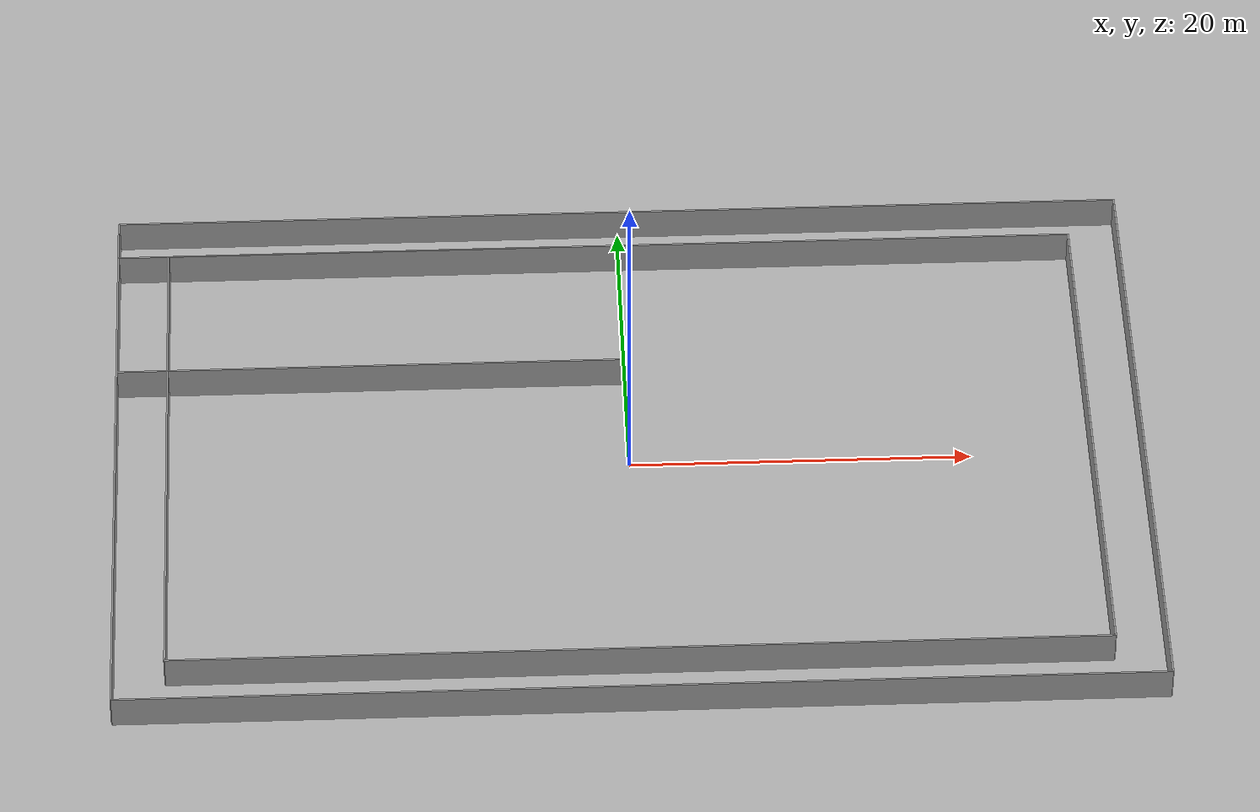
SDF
<?xml version="1.0"?>
<sdf version="1.9">
  <world name="levine_loop_world">
    <physics type="ode">
      <max_step_size>0.001</max_step_size>
      <real_time_factor>1</real_time_factor>
      <real_time_update_rate>1000</real_time_update_rate>
    </physics>
    <light name="sun" type="directional">
      <cast_shadows>1</cast_shadows>
      <pose>0 0 100 0 0 0</pose>
      <diffuse>0.8 0.8 0.8 1</diffuse>
      <specular>0.1 0.1 0.1 1</specular>
      <direction>-0.5 0.5 -1</direction>
    </light>
    <!-- Ground Plane -->
    <model name="ground_plane">
      <static>true</static>
      <pose>0 0 0 0 0 0</pose>
      <link name="link">
        <collision name="collision">
          <geometry>
            <plane>
              <normal>0 0 1</normal>
              <size>200 200</size>
            </plane>
          </geometry>
          <surface>
            <friction>
              <ode>
                <solver>
                  <type>quick</type>
                  <iters>50</iters>
                  <precon_iters>0</precon_iters>
                  <sor>1.3</sor>  <!-- Relaxation factor -->
                </solver>
                <constraints>
                  <cfm>1e-5</cfm>  <!-- Contact "softness" -->
                  <erp>0.2</erp>   <!-- Error reduction -->
                </constraints>
              </ode>
            </friction>
          </surface>
        </collision>
        <visual name="visual">
          <cast_shadows>0</cast_shadows>
          <geometry>
            <plane>
              <normal>0 0 1</normal>
              <size>200 200</size>
            </plane>
          </geometry>
          <material>
            <ambient>0.4 0.4 0.4 1</ambient>
            <diffuse>0.7 0.7 0.7 1</diffuse>
          </material>
        </visual>
      </link>
    </model>
    <!-- Model for Walls -->
    <model name="levine_walls">
      <static>true</static>
      <pose>0 0 0 0 0 0</pose>
      <!-- Outer Walls -->
      <link name="outer_wall_north">
        <collision name="collision">
          <geometry>
            <box>
              <size>60 0.1 2</size>
            </box>
          </geometry>
          <pose>0 0 1 0 0 0</pose>
        </collision>
        <visual name="visual">
          <pose>0 0 1 0 0 0</pose>
          <geometry>
            <box>
              <size>60 0.1 2</size>
            </box>
          </geometry>
          <material>
            <script>
              <uri>file://media/materials/scripts/gazebo.material</uri>
              <name>Gazebo/Grey</name>
            </script>
            <ambient>1 1 1 1</ambient>
          </material>
        </visual>
        <pose>0 20 0 0 0 0</pose>
      </link>
      <link name="outer_wall_south">
        <collision name="collision">
          <geometry>
            <box>
              <size>60 0.1 2</size>
            </box>
          </geometry>
          <pose>0 0 1 0 0 0</pose>
        </collision>
        <visual name="visual">
          <pose>0 0 1 0 0 0</pose>
          <geometry>
            <box>
              <size>60 0.1 2</size>
            </box>
          </geometry>
          <material>
            <script>
              <uri>file://media/materials/scripts/gazebo.material</uri>
              <name>Gazebo/Grey</name>
            </script>
            <ambient>1 1 1 1</ambient>
          </material>
        </visual>
        <pose>0 -20 0 0 0 0</pose>
      </link>
      <link name="outer_wall_east">
        <collision name="collision">
          <geometry>
            <box>
              <size>40 0.1 2</size>
            </box>
          </geometry>
          <pose>0 0 1 0 0 0</pose>
        </collision>
        <visual name="visual">
          <pose>0 0 1 0 0 0</pose>
          <geometry>
            <box>
              <size>40 0.1 2</size>
            </box>
          </geometry>
          <material>
            <script>
              <uri>file://media/materials/scripts/gazebo.material</uri>
              <name>Gazebo/Grey</name>
            </script>
            <ambient>1 1 1 1</ambient>
          </material>
        </visual>
        <pose>30 0 0 0 0 1.57079</pose>
      </link>
      <link name="outer_wall_west">
        <collision name="collision">
          <geometry>
            <box>
              <size>40 0.1 2</size>
            </box>
          </geometry>
          <pose>0 0 1 0 0 0</pose>
        </collision>
        <visual name="visual">
          <pose>0 0 1 0 0 0</pose>
          <geometry>
            <box>
              <size>40 0.1 2</size>
            </box>
          </geometry>
          <material>
            <script>
              <uri>file://media/materials/scripts/gazebo.material</uri>
              <name>Gazebo/Grey</name>
            </script>
            <ambient>1 1 1 1</ambient>
          </material>
        </visual>
        <pose>-30 0 0 0 0 1.57079</pose>
      </link>
      <!-- Inner Walls (Main Loop) -->
      <link name="inner_wall_north">
        <collision name="collision">
          <geometry>
            <box>
              <size>54 0.1 2</size>
            </box>
          </geometry>
          <pose>0 0 1 0 0 0</pose>
        </collision>
        <visual name="visual">
          <pose>0 0 1 0 0 0</pose>
          <geometry>
            <box>
              <size>54 0.1 2</size>
            </box>
          </geometry>
          <material>
            <script>
              <uri>file://media/materials/scripts/gazebo.material</uri>
              <name>Gazebo/Grey</name>
            </script>
            <ambient>1 1 1 1</ambient>
          </material>
        </visual>
        <pose>0 17 0 0 0 0</pose>
      </link>
      <link name="inner_wall_south">
        <collision name="collision">
          <geometry>
            <box>
              <size>54 0.1 2</size>
            </box>
          </geometry>
          <pose>0 0 1 0 0 0</pose>
        </collision>
        <visual name="visual">
          <pose>0 0 1 0 0 0</pose>
          <geometry>
            <box>
              <size>54 0.1 2</size>
            </box>
          </geometry>
          <material>
            <script>
              <uri>file://media/materials/scripts/gazebo.material</uri>
              <name>Gazebo/Grey</name>
            </script>
            <ambient>1 1 1 1</ambient>
          </material>
        </visual>
        <pose>0 -17 0 0 0 0</pose>
      </link>
      <link name="inner_wall_east">
        <collision name="collision">
          <geometry>
            <box>
              <size>34 0.1 2</size>
            </box>
          </geometry>
          <pose>0 0 1 0 0 0</pose>
        </collision>
        <visual name="visual">
          <pose>0 0 1 0 0 0</pose>
          <geometry>
            <box>
              <size>34 0.1 2</size>
            </box>
          </geometry>
          <material>
            <script>
              <uri>file://media/materials/scripts/gazebo.material</uri>
              <name>Gazebo/Grey</name>
            </script>
            <ambient>1 1 1 1</ambient>
          </material>
        </visual>
        <pose>27 0 0 0 0 1.57079</pose>
      </link>
      <link name="inner_wall_west">
        <collision name="collision">
          <geometry>
            <box>
              <size>34 0.1 2</size>
            </box>
          </geometry>
          <pose>0 0 1 0 0 0</pose>
        </collision>
        <visual name="visual">
          <pose>0 0 1 0 0 0</pose>
          <geometry>
            <box>
              <size>34 0.1 2</size>
            </box>
          </geometry>
          <material>
            <script>
              <uri>file://media/materials/scripts/gazebo.material</uri>
              <name>Gazebo/Grey</name>
            </script>
            <ambient>1 1 1 1</ambient>
          </material>
        </visual>
        <pose>-27 0 0 0 0 1.57079</pose>
      </link>
      <!-- Inner Loop in Top-Left -->
      <link name="inner_loop_north">
        <collision name="collision">
          <geometry>
            <box>
              <size>30 0.1 2</size>
            </box>
          </geometry>
          <pose>0 0 1 0 0 0</pose>
        </collision>
        <visual name="visual">
          <pose>0 0 1 0 0 0</pose>
          <geometry>
            <box>
              <size>30 0.1 2</size>
            </box>
          </geometry>
          <material>
            <script>
              <uri>file://media/materials/scripts/gazebo.material</uri>
              <name>Gazebo/Grey</name>
            </script>
            <ambient>1 1 1 1</ambient>
          </material>
        </visual>
        <pose>-15 17 0 0 0 0</pose>
      </link>
      <link name="inner_loop_south">
        <collision name="collision">
          <geometry>
            <box>
              <size>30 0.1 2</size>
            </box>
          </geometry>
          <pose>0 0 1 0 0 0</pose>
        </collision>
        <visual name="visual">
          <pose>0 0 1 0 0 0</pose>
          <geometry>
            <box>
              <size>30 0.1 2</size>
            </box>
          </geometry>
          <material>
            <script>
              <uri>file://media/materials/scripts/gazebo.material</uri>
              <name>Gazebo/Grey</name>
            </script>
            <ambient>1 1 1 1</ambient>
          </material>
        </visual>
        <pose>-15 7 0 0 0 0</pose>
      </link>
      <link name="inner_loop_east">
        <collision name="collision">
          <geometry>
            <box>
              <size>10 0.1 2</size>
            </box>
          </geometry>
          <pose>0 0 1 0 0 0</pose>
        </collision>
        <visual name="visual">
          <pose>0 0 1 0 0 0</pose>
          <geometry>
            <box>
              <size>10 0.1 2</size>
            </box>
          </geometry>
          <material>
            <script>
              <uri>file://media/materials/scripts/gazebo.material</uri>
              <name>Gazebo/Grey</name>
            </script>
            <ambient>1 1 1 1</ambient>
          </material>
        </visual>
        <pose>0 12 0 0 0 1.57079</pose>
      </link>
      <link name="inner_loop_west">
        <collision name="collision">
          <geometry>
            <box>
              <size>10 0.1 2</size>
            </box>
          </geometry>
          <pose>0 0 1 0 0 0</pose>
        </collision>
        <visual name="visual">
          <pose>0 0 1 0 0 0</pose>
          <geometry>
            <box>
              <size>10 0.1 2</size>
            </box>
          </geometry>
          <material>
            <script>
              <uri>file://media/materials/scripts/gazebo.material</uri>
              <name>Gazebo/Grey</name>
            </script>
            <ambient>1 1 1 1</ambient>
          </material>
        </visual>
        <pose>-30 12 0 0 0 1.57079</pose>
      </link>
    </model>
  </world>
</sdf>
